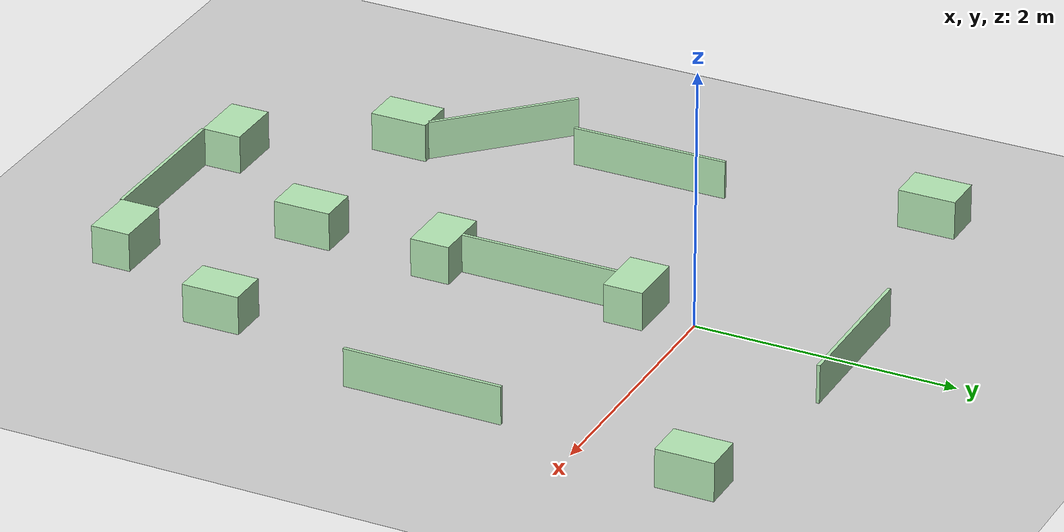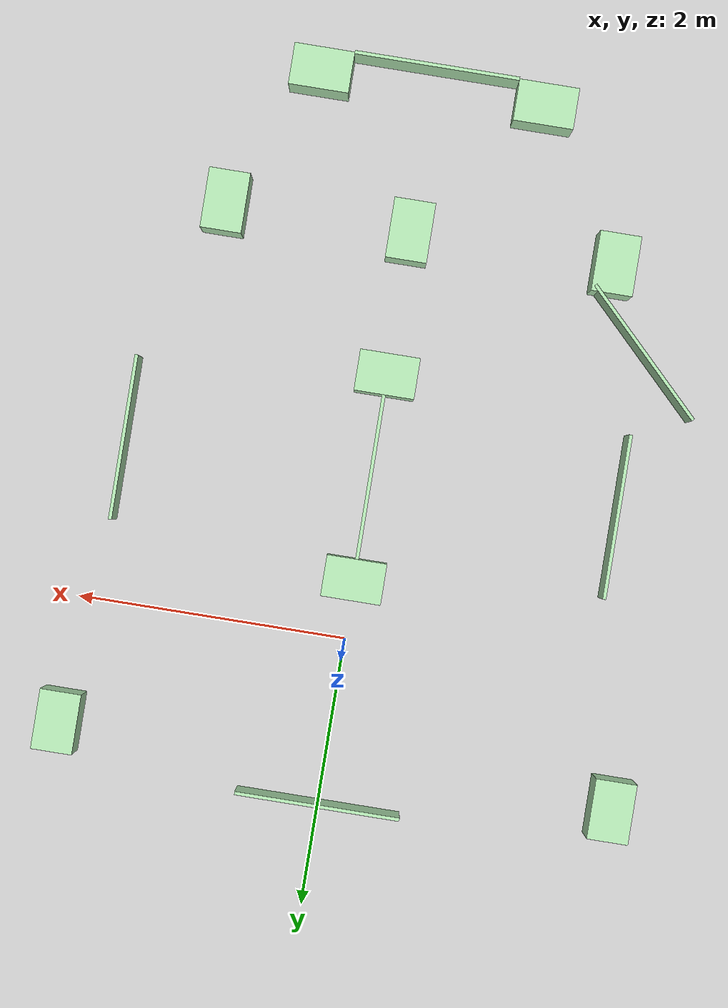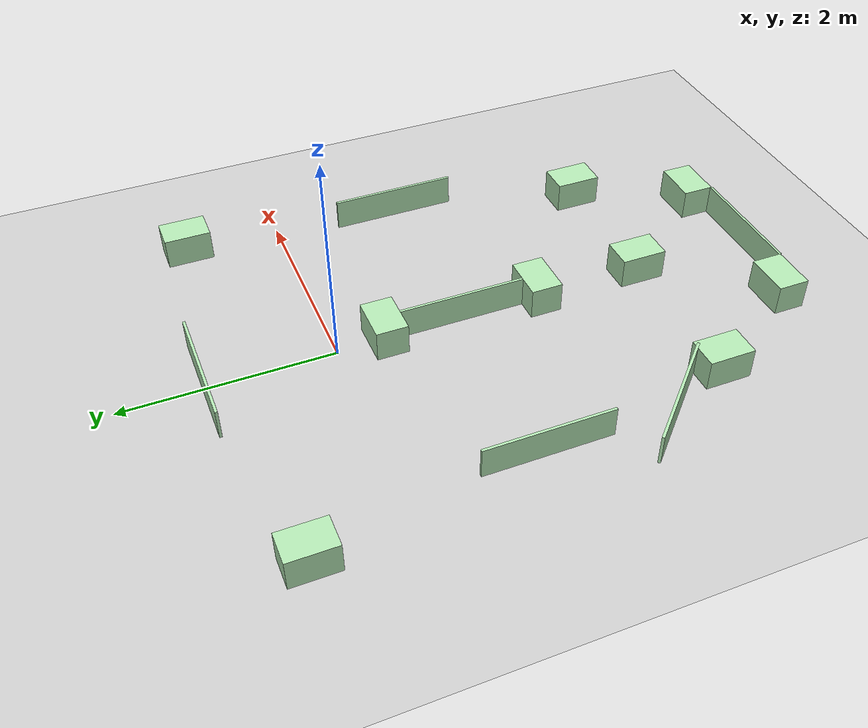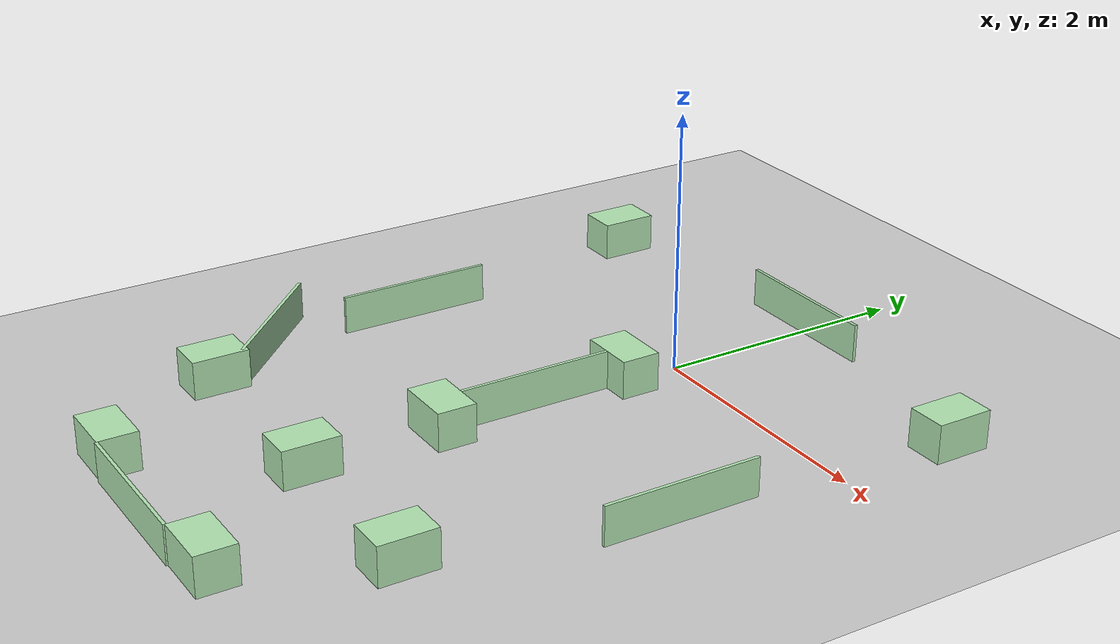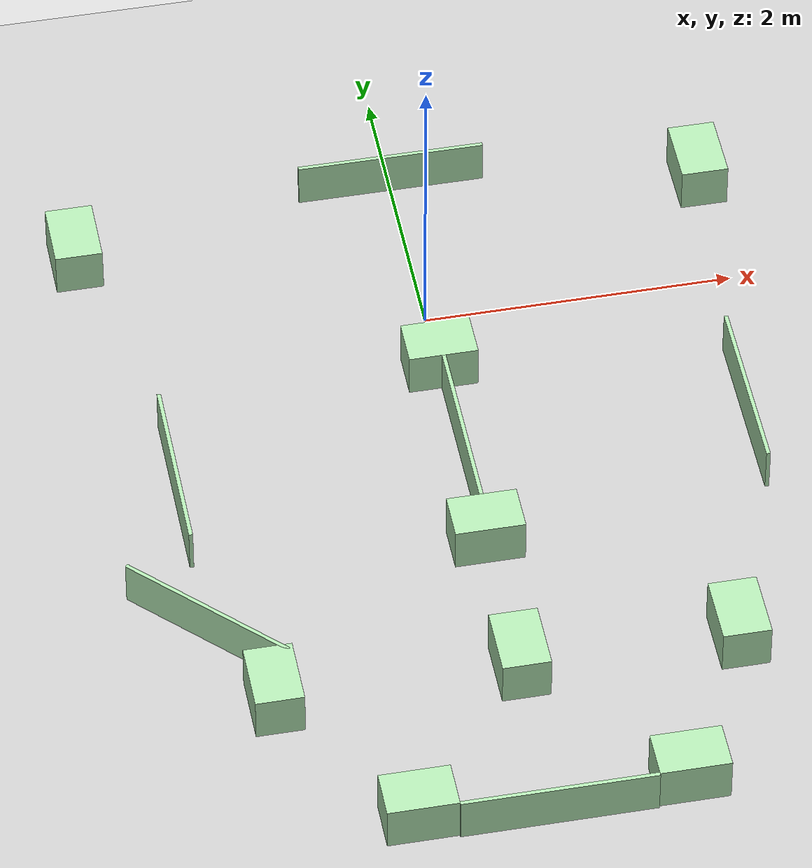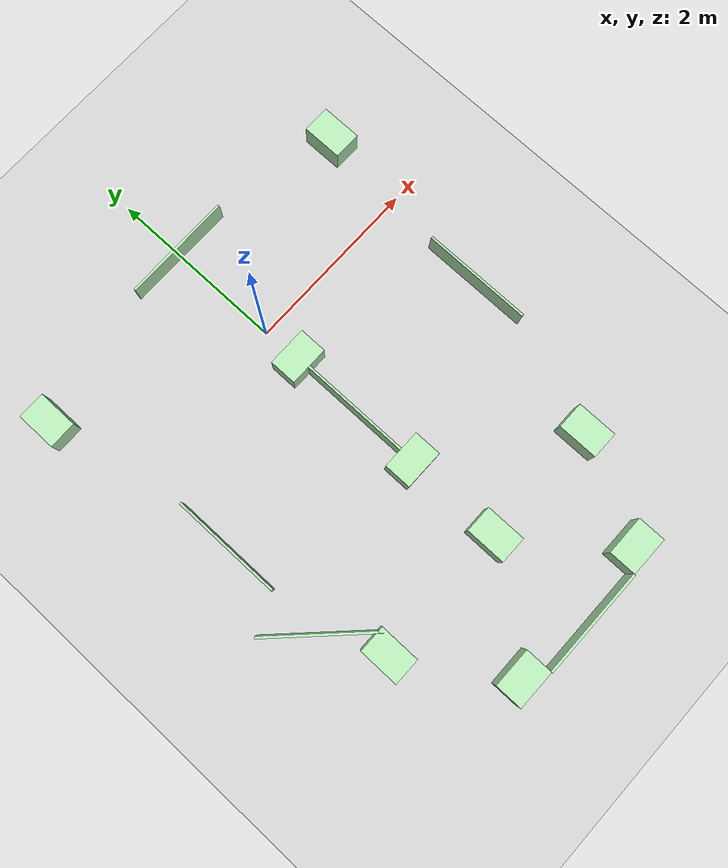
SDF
<?xml version="1.0" encoding="UTF-8"?>
<sdf version="1.4">
  <world name="default">
    <scene>
      <ambient>0.5 0.5 0.5 1</ambient>
      <background>0.5 0.5 0.5 1</background>
      <shadows>false</shadows>
    </scene>
    <physics type="ode">
      <gravity>0 0 -9.81</gravity>
      <ode>
        <solver>
          <type>quick</type>
          <iters>10</iters>
          <sor>1.3</sor>
        </solver>
        <constraints>
          <cfm>0.0</cfm>
          <erp>0.2</erp>
          <contact_max_correcting_vel>100.0</contact_max_correcting_vel>
          <contact_surface_layer>0.001</contact_surface_layer>
        </constraints>
      </ode>
      <real_time_update_rate>1000</real_time_update_rate>
      <max_step_size>0.001</max_step_size>
    </physics>
    <light type="directional" name="directional_light_1">
      <cast_shadows>false</cast_shadows>
      <pose>0 0 30 0.1 0.1 0</pose>
      <diffuse>1.0 1.0 1.0 1</diffuse>
      <specular>.1 .1 .1 1</specular>
      <attenuation>
        <range>300</range>
      </attenuation>
      <direction>0.1 0.1 -1</direction>
    </light>
    <model name='ground_plane'>
      <static>1</static>
      <link name='link'>
        <collision name='collision'>
          <geometry>
            <plane>
              <normal>0 0 1</normal>
              <size>100 100</size>
            </plane>
          </geometry>
          <surface>
            <friction>
              <ode>
                <mu>100</mu>
                <mu2>50</mu2>
              </ode>
              <torsional>
                <ode/>
              </torsional>
            </friction>
            <contact>
              <ode/>
            </contact>
            <bounce/>
          </surface>
          <max_contacts>10</max_contacts>
        </collision>
        <visual name='visual'>
          <cast_shadows>0</cast_shadows>
          <geometry>
            <plane>
              <normal>0 0 1</normal>
              <size>100 100</size>
            </plane>
          </geometry>
          <material>
            <script>
              <uri>file://media/materials/scripts/gazebo.material</uri>
              <name>Gazebo/Grey</name>
            </script>
          </material>
        </visual>
        <self_collide>0</self_collide>
        <kinematic>0</kinematic>
        <gravity>1</gravity>
      </link>
    </model>

<!--______________________________gazebo world______________________________ -->
    <model name="wall_1">
      <static>true</static>
      <link name="wall_1_link">
        <pose> 0.0 -4.2672  0.15 0 0 1.57079632679</pose>
        <collision name="wall_1_collision">
          <geometry>
            <box>
              <size>0.0254 1.2192 0.3</size>
            </box>
          </geometry>
        </collision>
        <visual name="wall_1_visual">
          <geometry>
            <box>
              <size>0.0254 1.2192 0.3</size>
            </box>
          </geometry>
          <material>
             <ambient>0.7 0.9 0.7 1.0</ambient>
             <diffuse>0.7 0.9 0.7 1.0</diffuse>
             <specular>0.1 0.1 0.1 1</specular>
             <emissive>0 0 0 0</emissive>
           </material>
        </visual>
      </link>
    </model>

    <model name="wall_2">
      <static>true</static>
      <link name="wall_2_link">
        <pose> 0.0 -1.2192  0.15 0 0 0.0</pose>
        <collision name="wall_2_collision">
          <geometry>
            <box>
              <size>0.0254 1.2192 0.3</size>
            </box>
          </geometry>
        </collision>
        <visual name="wall_2_visual">
          <geometry>
            <box>
              <size>0.0254 1.2192 0.3</size>
            </box>
          </geometry>
          <material>
             <ambient>0.7 0.9 0.7 1.0</ambient>
             <diffuse>0.7 0.9 0.7 1.0</diffuse>
             <specular>0.1 0.1 0.1 1</specular>
             <emissive>0 0 0 0</emissive>
           </material>
        </visual>
      </link>
    </model>

    <model name="wall_3">
      <static>true</static>
      <link name="wall_3_link">
        <pose> 0.0 1.2192  0.15 0 0 1.57079632679</pose>
        <collision name="wall_3_collision">
          <geometry>
            <box>
              <size>0.0254 1.2192 0.3</size>
            </box>
          </geometry>
        </collision>
        <visual name="wall_3_visual">
          <geometry>
            <box>
              <size>0.0254 1.2192 0.3</size>
            </box>
          </geometry>
          <material>
             <ambient>0.7 0.9 0.7 1.0</ambient>
             <diffuse>0.7 0.9 0.7 1.0</diffuse>
             <specular>0.1 0.1 0.1 1</specular>
             <emissive>0 0 0 0</emissive>
           </material>
        </visual>
      </link>
    </model>

    <model name="wall_4">
      <static>true</static>
      <link name="wall_4_link">
        <pose> 1.8288 -1.2192  0.15 0 0 0.0</pose>
        <collision name="wall_4_collision">
          <geometry>
            <box>
              <size>0.0254 1.2192 0.3</size>
            </box>
          </geometry>
        </collision>
        <visual name="wall_4_visual">
          <geometry>
            <box>
              <size>0.0254 1.2192 0.3</size>
            </box>
          </geometry>
          <material>
             <ambient>0.7 0.9 0.7 1.0</ambient>
             <diffuse>0.7 0.9 0.7 1.0</diffuse>
             <specular>0.1 0.1 0.1 1</specular>
             <emissive>0 0 0 0</emissive>
           </material>
        </visual>
      </link>
    </model>

    <model name="wall_5">
      <static>true</static>
      <link name="wall_5_link">
        <pose> -1.8288 -1.2192  0.15 0 0 0.0</pose>
        <collision name="wall_5_collision">
          <geometry>
            <box>
              <size>0.0254 1.2192 0.3</size>
            </box>
          </geometry>
        </collision>
        <visual name="wall_5_visual">
          <geometry>
            <box>
              <size>0.0254 1.2192 0.3</size>
            </box>
          </geometry>
          <material>
             <ambient>0.7 0.9 0.7 1.0</ambient>
             <diffuse>0.7 0.9 0.7 1.0</diffuse>
             <specular>0.1 0.1 0.1 1</specular>
             <emissive>0 0 0 0</emissive>
           </material>
        </visual>
      </link>
    </model>

    <model name="wall_6">
      <static>true</static>
      <link name="wall_6_link">
        <pose> -1.8288 -2.4384  0.15 0 0 0.785398163397</pose>
        <collision name="wall_6_collision">
          <geometry>
            <box>
              <size>0.0254 1.2192 0.3</size>
            </box>
          </geometry>
        </collision>
        <visual name="wall_6_visual">
          <geometry>
            <box>
              <size>0.0254 1.2192 0.3</size>
            </box>
          </geometry>
          <material>
             <ambient>0.7 0.9 0.7 1.0</ambient>
             <diffuse>0.7 0.9 0.7 1.0</diffuse>
             <specular>0.1 0.1 0.1 1</specular>
             <emissive>0 0 0 0</emissive>
           </material>
        </visual>
      </link>
    </model>

    <model name="box_7">
      <static>true</static>
      <link name="box_7_link">
        <pose> 0.0 -0.4572  0.15 0 0 1.57079632679</pose>
        <collision name="box_7_collision">
          <geometry>
            <box>
              <size>0.3048 0.4445 0.3</size>
            </box>
          </geometry>
        </collision>
        <visual name="box_7_visual">
          <geometry>
            <box>
              <size>0.3048 0.4445 0.3</size>
            </box>
          </geometry>
          <material>
             <ambient>0.7 0.9 0.7 1.0</ambient>
             <diffuse>0.7 0.9 0.7 1.0</diffuse>
             <specular>0.1 0.1 0.1 1</specular>
             <emissive>0 0 0 0</emissive>
           </material>
        </visual>
      </link>
    </model>

    <model name="box_8">
      <static>true</static>
      <link name="box_8_link">
        <pose> 0.0 -1.9812  0.15 0 0 1.57079632679</pose>
        <collision name="box_8_collision">
          <geometry>
            <box>
              <size>0.3048 0.4445 0.3</size>
            </box>
          </geometry>
        </collision>
        <visual name="box_8_visual">
          <geometry>
            <box>
              <size>0.3048 0.4445 0.3</size>
            </box>
          </geometry>
          <material>
             <ambient>0.7 0.9 0.7 1.0</ambient>
             <diffuse>0.7 0.9 0.7 1.0</diffuse>
             <specular>0.1 0.1 0.1 1</specular>
             <emissive>0 0 0 0</emissive>
           </material>
        </visual>
      </link>
    </model>

    <model name="box_9">
      <static>true</static>
      <link name="box_9_link">
        <pose> 0.83185 -4.1148  0.15 0 0 1.57079632679</pose>
        <collision name="box_9_collision">
          <geometry>
            <box>
              <size>0.3048 0.4445 0.3</size>
            </box>
          </geometry>
        </collision>
        <visual name="box_9_visual">
          <geometry>
            <box>
              <size>0.3048 0.4445 0.3</size>
            </box>
          </geometry>
          <material>
             <ambient>0.7 0.9 0.7 1.0</ambient>
             <diffuse>0.7 0.9 0.7 1.0</diffuse>
             <specular>0.1 0.1 0.1 1</specular>
             <emissive>0 0 0 0</emissive>
           </material>
        </visual>
      </link>
    </model>

    <model name="box_10">
      <static>true</static>
      <link name="box_10_link">
        <pose> -0.83185 -4.1148  0.15 0 0 1.57079632679</pose>
        <collision name="box_10_collision">
          <geometry>
            <box>
              <size>0.3048 0.4445 0.3</size>
            </box>
          </geometry>
        </collision>
        <visual name="box_10_visual">
          <geometry>
            <box>
              <size>0.3048 0.4445 0.3</size>
            </box>
          </geometry>
          <material>
             <ambient>0.7 0.9 0.7 1.0</ambient>
             <diffuse>0.7 0.9 0.7 1.0</diffuse>
             <specular>0.1 0.1 0.1 1</specular>
             <emissive>0 0 0 0</emissive>
           </material>
        </visual>
      </link>
    </model>

    <model name="box_11">
      <static>true</static>
      <link name="box_11_link">
        <pose> 0.0 -3.048  0.15 0 0 0.0</pose>
        <collision name="box_11_collision">
          <geometry>
            <box>
              <size>0.3048 0.4445 0.3</size>
            </box>
          </geometry>
        </collision>
        <visual name="box_11_visual">
          <geometry>
            <box>
              <size>0.3048 0.4445 0.3</size>
            </box>
          </geometry>
          <material>
             <ambient>0.7 0.9 0.7 1.0</ambient>
             <diffuse>0.7 0.9 0.7 1.0</diffuse>
             <specular>0.1 0.1 0.1 1</specular>
             <emissive>0 0 0 0</emissive>
           </material>
        </visual>
      </link>
    </model>

    <model name="box_12">
      <static>true</static>
      <link name="box_12_link">
        <pose> 1.3716 -3.048  0.15 0 0 0.0</pose>
        <collision name="box_12_collision">
          <geometry>
            <box>
              <size>0.3048 0.4445 0.3</size>
            </box>
          </geometry>
        </collision>
        <visual name="box_12_visual">
          <geometry>
            <box>
              <size>0.3048 0.4445 0.3</size>
            </box>
          </geometry>
          <material>
             <ambient>0.7 0.9 0.7 1.0</ambient>
             <diffuse>0.7 0.9 0.7 1.0</diffuse>
             <specular>0.1 0.1 0.1 1</specular>
             <emissive>0 0 0 0</emissive>
           </material>
        </visual>
      </link>
    </model>

    <model name="box_13">
      <static>true</static>
      <link name="box_13_link">
        <pose> -1.524 -3.048  0.15 0 0 0.0</pose>
        <collision name="box_13_collision">
          <geometry>
            <box>
              <size>0.3048 0.4445 0.3</size>
            </box>
          </geometry>
        </collision>
        <visual name="box_13_visual">
          <geometry>
            <box>
              <size>0.3048 0.4445 0.3</size>
            </box>
          </geometry>
          <material>
             <ambient>0.7 0.9 0.7 1.0</ambient>
             <diffuse>0.7 0.9 0.7 1.0</diffuse>
             <specular>0.1 0.1 0.1 1</specular>
             <emissive>0 0 0 0</emissive>
           </material>
        </visual>
      </link>
    </model>

    <model name="box_14">
      <static>true</static>
      <link name="box_14_link">
        <pose> 1.9812 0.9144  0.15 0 0 0.0</pose>
        <collision name="box_14_collision">
          <geometry>
            <box>
              <size>0.3048 0.4445 0.3</size>
            </box>
          </geometry>
        </collision>
        <visual name="box_14_visual">
          <geometry>
            <box>
              <size>0.3048 0.4445 0.3</size>
            </box>
          </geometry>
          <material>
             <ambient>0.7 0.9 0.7 1.0</ambient>
             <diffuse>0.7 0.9 0.7 1.0</diffuse>
             <specular>0.1 0.1 0.1 1</specular>
             <emissive>0 0 0 0</emissive>
           </material>
        </visual>
      </link>
    </model>

    <model name="box_15">
      <static>true</static>
      <link name="box_15_link">
        <pose> -2.1336 0.9144  0.15 0 0 0.0</pose>
        <collision name="box_15_collision">
          <geometry>
            <box>
              <size>0.3048 0.4445 0.3</size>
            </box>
          </geometry>
        </collision>
        <visual name="box_15_visual">
          <geometry>
            <box>
              <size>0.3048 0.4445 0.3</size>
            </box>
          </geometry>
          <material>
             <ambient>0.7 0.9 0.7 1.0</ambient>
             <diffuse>0.7 0.9 0.7 1.0</diffuse>
             <specular>0.1 0.1 0.1 1</specular>
             <emissive>0 0 0 0</emissive>
           </material>
        </visual>
      </link>
    </model>

<!--______________________________gazebo world______________________________ -->

  </world>
</sdf>
